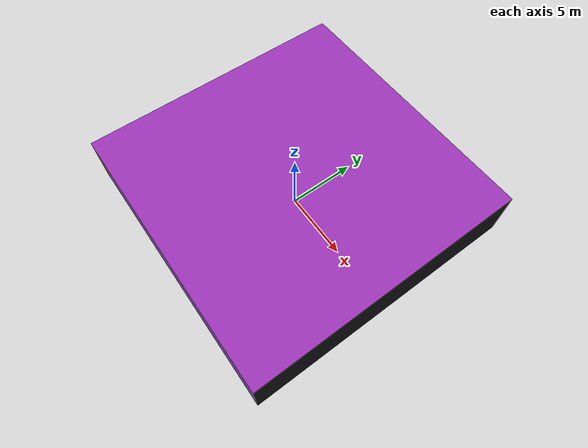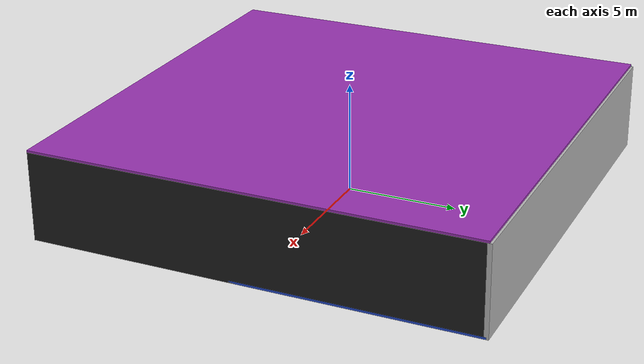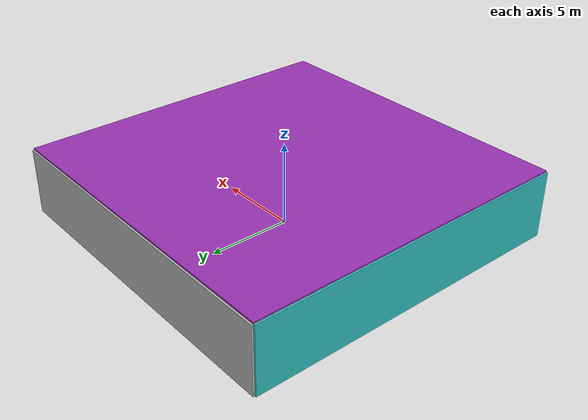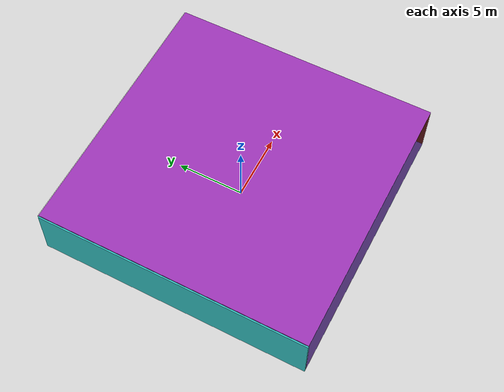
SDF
<sdf version="1.4">
 <world name="default">
  <physics type="ode">
   <max_step_size>0.001</max_step_size>
   <real_time_factor>1</real_time_factor>
   <real_time_update_rate>1000</real_time_update_rate>
   <gravity>0 0 -9.8</gravity>
  </physics>
  <scene><ambient>0.4 0.4 0.4 1</ambient><background>0.7 0.7 0.7 1</background><shadows>1</shadows></scene>
  <model name="Surrounding">
   <static>1</static>
   <link name="Ceiling">
    <collision name="Ceiling_Collision"><geometry><box><size>20 20 0.1</size></box></geometry></collision>
    <visual name="Ceiling_Visual">
     <geometry><box><size>20 20 0.1</size></box></geometry>
     <material>
      <script><uri>file://media/materials/scripts/gazebo.material</uri><name>Gazebo/PurpleGlow</name></script>
     </material>
    </visual>
    <pose>0 0 4.05 0 0 0</pose>
   </link>
   <link name="Wall_South">
    <collision name="Wall_South_Collision">
     <geometry><box><size>20 0 4</size></box></geometry>
     <pose>0 0 2 0 -0 0</pose>
    </collision>
    <visual name="Wall_South_Visual">
     <pose>0 0 2 0 -0 0</pose>
     <geometry><box><size>20 0 4</size></box></geometry>
     <material>
      <script><uri>file://media/materials/scripts/gazebo.material</uri><name>Gazebo/RedTransparent</name></script>
     </material>
    </visual>
    <velocity_decay><linear>0</linear><angular>0</angular></velocity_decay>
    <pose>0 -10 0 0 -0 0</pose>
   </link>
   <link name="Wall_East">
    <collision name="Wall_21_Collision">
     <geometry><box><size>20 0 4</size></box></geometry>
     <pose>0 0 2 0 -0 0</pose>
    </collision>
    <visual name="Wall_21_Visual">
     <pose>0 0 2 0 -0 0</pose>
     <geometry><box><size>20 0 4</size></box></geometry>
     <material>
      <script><uri>file://media/materials/scripts/gazebo.material</uri><name>Gazebo/FlatBlack</name></script>
     </material>
    </visual>
    <velocity_decay><linear>0</linear><angular>0</angular></velocity_decay>
    <pose>10 0 0 0 -0 1.5708</pose>
   </link>
   <link name="Wall_North">
    <collision name="Wall_22_Collision">
     <geometry><box><size>20 0.2 4</size></box></geometry>
     <pose>0 0 2 0 -0 0</pose>
    </collision>
    <visual name="Wall_22_Visual">
     <pose>0 0 2 0 -0 0</pose>
     <geometry><box><size>20 0.2 4</size></box></geometry>
     <material>
      <script><uri>file://media/materials/scripts/gazebo.material</uri><name>Gazebo/PioneerBody</name></script>
     </material>
    </visual>
    <velocity_decay><linear>0</linear><angular>0</angular></velocity_decay>
    <pose>0 10 0 0 -0 0</pose>
   </link>
   <link name="Wall_West">
    <collision name="Wall_23_Collision">
     <geometry><box><size>20 0.2 4</size></box></geometry>
     <pose>0 0 2 0 -0 0</pose>
    </collision>
    <visual name="Wall_23_Visual">
     <pose>0 0 2 0 -0 0</pose>
     <geometry><box><size>20 0.2 4</size></box></geometry>
     <material>
      <script>
       <uri>file://media/materials/scripts/gazebo.material</uri>
       <name>Gazebo/TurquoiseGlowOutline</name>
      </script>
     </material>
    </visual>
    <velocity_decay><linear>0</linear><angular>0</angular></velocity_decay>
    <pose>-10 0 0 0 0 -1.5708</pose>
   </link>
   <link name="Ground_link">
    <collision name="collision">
     <pose>0 0 .05 0 -0 0</pose>
     <geometry><box><size>20 20 0.1</size></box></geometry>
    </collision>
    <visual name="visual">
     <pose>0 0 .05 0 -0 0</pose>
     <geometry><box><size>20 20 0.1</size></box></geometry>
     <material>
      <script><uri>file://media/materials/scripts/gazebo.material</uri><name>Gazebo/BlueLaser</name></script>
     </material>
    </visual>
   </link>
   <static>1</static>
  </model>
  <spherical_coordinates>
   <surface_model>EARTH_WGS84</surface_model>
   <latitude_deg>0</latitude_deg>
   <longitude_deg>0</longitude_deg>
   <elevation>0</elevation>
   <heading_deg>0</heading_deg>
  </spherical_coordinates>
  <light name="lightball_0" type="diffuse">
   <diffuse>0.8 0.8 0.8 1</diffuse>
   <specular>0.2 0.2 0.2 1</specular>
   <attenuation>
    <range>100</range>
    <constant>0.7</constant>
    <linear>0.01</linear>
    <quadratic>0.001</quadratic>
   </attenuation>
   <direction>-0.5 0.1 -0.9</direction>
   <pose>5.52970671533 -9.79969690681 3.0156755641 0 0 0</pose>
  </light>
  <light name="lightball_1" type="diffuse">
   <diffuse>0.8 0.8 0.8 1</diffuse>
   <specular>0.2 0.2 0.2 1</specular>
   <attenuation>
    <range>100</range>
    <constant>0.7</constant>
    <linear>0.01</linear>
    <quadratic>0.001</quadratic>
   </attenuation>
   <direction>-0.5 0.1 -0.9</direction>
   <pose>-8.28978555531 6.38620492503 1.55809194838 0 0 0</pose>
  </light>
  <light name="lightball_2" type="diffuse">
   <diffuse>0.8 0.8 0.8 1</diffuse>
   <specular>0.2 0.2 0.2 1</specular>
   <attenuation>
    <range>100</range>
    <constant>0.7</constant>
    <linear>0.01</linear>
    <quadratic>0.001</quadratic>
   </attenuation>
   <direction>-0.5 0.1 -0.9</direction>
   <pose>-2.91822445478 1.84896340282 0.70618057319 0 0 0</pose>
  </light>
  <light name="lightball_3" type="diffuse">
   <diffuse>0.8 0.8 0.8 1</diffuse>
   <specular>0.2 0.2 0.2 1</specular>
   <attenuation>
    <range>100</range>
    <constant>0.7</constant>
    <linear>0.01</linear>
    <quadratic>0.001</quadratic>
   </attenuation>
   <direction>-0.5 0.1 -0.9</direction>
   <pose>6.90628750145 4.25547138646 3.47125541093 0 0 0</pose>
  </light>
  <light name="lightball_4" type="diffuse">
   <diffuse>0.8 0.8 0.8 1</diffuse>
   <specular>0.2 0.2 0.2 1</specular>
   <attenuation>
    <range>100</range>
    <constant>0.7</constant>
    <linear>0.01</linear>
    <quadratic>0.001</quadratic>
   </attenuation>
   <direction>-0.5 0.1 -0.9</direction>
   <pose>-9.63900522733 1.94985673887 1.18997338681 0 0 0</pose>
  </light>
  <light name="lightball_5" type="diffuse">
   <diffuse>0.8 0.8 0.8 1</diffuse>
   <specular>0.2 0.2 0.2 1</specular>
   <attenuation>
    <range>100</range>
    <constant>0.7</constant>
    <linear>0.01</linear>
    <quadratic>0.001</quadratic>
   </attenuation>
   <direction>-0.5 0.1 -0.9</direction>
   <pose>6.78240814634 -9.49150094017 3.64642204119 0 0 0</pose>
  </light>
  <light name="lightball_6" type="diffuse">
   <diffuse>0.8 0.8 0.8 1</diffuse>
   <specular>0.2 0.2 0.2 1</specular>
   <attenuation>
    <range>100</range>
    <constant>0.7</constant>
    <linear>0.01</linear>
    <quadratic>0.001</quadratic>
   </attenuation>
   <direction>-0.5 0.1 -0.9</direction>
   <pose>-1.90904192898 -0.945038962949 3.28458878057 0 0 0</pose>
  </light>
  <light name="lightball_7" type="diffuse">
   <diffuse>0.8 0.8 0.8 1</diffuse>
   <specular>0.2 0.2 0.2 1</specular>
   <attenuation>
    <range>100</range>
    <constant>0.7</constant>
    <linear>0.01</linear>
    <quadratic>0.001</quadratic>
   </attenuation>
   <direction>-0.5 0.1 -0.9</direction>
   <pose>-3.20476790035 6.40284052151 0.969871457123 0 0 0</pose>
  </light>
  <light name="lightball_8" type="diffuse">
   <diffuse>0.8 0.8 0.8 1</diffuse>
   <specular>0.2 0.2 0.2 1</specular>
   <attenuation>
    <range>100</range>
    <constant>0.7</constant>
    <linear>0.01</linear>
    <quadratic>0.001</quadratic>
   </attenuation>
   <direction>-0.5 0.1 -0.9</direction>
   <pose>8.2253980442 7.78448257459 2.10415846784 0 0 0</pose>
  </light>
  <light name="lightball_9" type="diffuse">
   <diffuse>0.8 0.8 0.8 1</diffuse>
   <specular>0.2 0.2 0.2 1</specular>
   <attenuation>
    <range>100</range>
    <constant>0.7</constant>
    <linear>0.01</linear>
    <quadratic>0.001</quadratic>
   </attenuation>
   <direction>-0.5 0.1 -0.9</direction>
   <pose>-0.196493856209 -7.86705468489 1.73227556266 0 0 0</pose>
  </light>
  <light name="lightball_10" type="diffuse">
   <diffuse>0.8 0.8 0.8 1</diffuse>
   <specular>0.2 0.2 0.2 1</specular>
   <attenuation>
    <range>100</range>
    <constant>0.7</constant>
    <linear>0.01</linear>
    <quadratic>0.001</quadratic>
   </attenuation>
   <direction>-0.5 0.1 -0.9</direction>
   <pose>2.06684153279 0.844527823473 1.97301790749 0 0 0</pose>
  </light>
  <include><uri>model://cabinet</uri><pose>-7.12742980204 1.98006786105 0 0 0 2.14659199225</pose></include>
  <include>
   <uri>model://robocup_3Dsim_goal</uri>
   <pose>-4.88889513696 4.50801691503 0 0 0 1.67715879415</pose>
  </include>
  <include>
   <uri>model://textured_shapes</uri>
   <pose>1.58125861238 -4.97098381776 0 0 0 0.0101864278875</pose>
  </include>
  <include><uri>model://cabinet</uri><pose>3.93523428747 6.89055444372 0 0 0 0.700017569472</pose></include>
 </world>
</sdf>

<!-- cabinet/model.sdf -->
<sdf version="1.5">
  <model name="cabinet">
    <static>true</static>
    <link name="cabinet_bottom_plate">
      <inertial>
        <pose>0 0 -1 0 0 0</pose>
        <inertia>
          <ixx>2.050000</ixx>
          <ixy>0</ixy>
          <ixz>0</ixz>
          <iyy>2.050000</iyy>
          <iyz>0</iyz>
          <izz>2.050000</izz>
        </inertia>
        <mass>25.000000</mass>
      </inertial>
      <collision name="cabinet_bottom_plate_geom">
        <pose>0 0 0.010000 0 0 0</pose>
        <geometry>
          <box>
            <size>0.450000 0.450000 0.020000</size>
          </box>
        </geometry>
      </collision>
      <visual name="cabinet_bottom_plate_geom_visual">
        <pose>0 0 0.010000 0 0 0</pose>
        <geometry>
          <box>
            <size>0.450000 0.450000 0.020000</size>
          </box>
        </geometry>
        <material>
          <script>
            <uri>model://media/materials/scripts/gazebo.material</uri>
            <name>Gazebo/Wood</name>
          </script>
        </material>
      </visual>
      <collision name="cabinet_bottom_plate_geom_cabinet_back_plate">
        <pose>0.235000 0 0.510000 0 0 0</pose>
        <geometry>
          <box>
            <size>0.020000 0.450000 1.020000</size>
          </box>
        </geometry>
      </collision>
      <visual name="cabinet_bottom_plate_geom_cabinet_back_plate_visual">
        <pose>0.235000 0 0.510000 0 0 0</pose>
        <geometry>
          <box>
            <size>0.020000 0.450000 1.020000</size>
          </box>
        </geometry>
        <material>
          <script>
            <uri>model://media/materials/scripts/gazebo.material</uri>
            <name>Gazebo/Wood</name>
          </script>
        </material>
      </visual>
      <collision name="cabinet_bottom_plate_geom_cabinet_left_plate">
        <pose>0 0.235000 0.510000 0 0 0</pose>
        <geometry>
          <box>
            <size>0.450000 0.020000 1.020000</size>
          </box>
        </geometry>
      </collision>
      <visual name="cabinet_bottom_plate_geom_cabinet_left_plate_visual">
        <pose>0 0.235000 0.510000 0 0 0</pose>
        <geometry>
          <box>
            <size>0.450000 0.020000 1.020000</size>
          </box>
        </geometry>
        <material>
          <script>
            <uri>model://media/materials/scripts/gazebo.material</uri>
            <name>Gazebo/Wood</name>
          </script>
        </material>
      </visual>
      <collision name="cabinet_bottom_plate_geom_cabinet_middle_plate">
        <pose>0 0 0.510000 0 0 0</pose>
        <geometry>
          <box>
            <size>0.450000 0.450000 0.020000</size>
          </box>
        </geometry>
      </collision>
      <visual name="cabinet_bottom_plate_geom_cabinet_middle_plate_visual">
        <pose>0 0 0.510000 0 0 0</pose>
        <geometry>
          <box>
            <size>0.450000 0.450000 0.020000</size>
          </box>
        </geometry>
        <material>
          <script>
            <uri>model://media/materials/scripts/gazebo.material</uri>
            <name>Gazebo/Wood</name>
          </script>
        </material>
      </visual>
      <collision name="cabinet_bottom_plate_geom_cabinet_right_plate">
        <pose>0 -0.235000 0.510000 0 0 0</pose>
        <geometry>
          <box>
            <size>0.450000 0.020000 1.020000</size>
          </box>
        </geometry>
      </collision>
      <visual name="cabinet_bottom_plate_geom_cabinet_right_plate_visual">
        <pose>0 -0.235000 0.510000 0 0 0</pose>
        <geometry>
          <box>
            <size>0.450000 0.020000 1.020000</size>
          </box>
        </geometry>
        <material>
          <script>
            <uri>model://media/materials/scripts/gazebo.material</uri>
            <name>Gazebo/Wood</name>
          </script>
        </material>
      </visual>
      <collision name="cabinet_bottom_plate_geom_cabinet_top_plate">
        <pose>0 0 1.010000 0 0 0</pose>
        <geometry>
          <box>
            <size>0.450000 0.450000 0.020000</size>
          </box>
        </geometry>
      </collision>
      <visual name="cabinet_bottom_plate_geom_cabinet_top_plate_visual">
        <pose>0 0 1.010000 0 0 0</pose>
        <geometry>
          <box>
            <size>0.450000 0.450000 0.020000</size>
          </box>
        </geometry>
        <material>
          <script>
            <uri>model://media/materials/scripts/gazebo.material</uri>
            <name>Gazebo/Wood</name>
          </script>
        </material>
      </visual>
    </link>
  </model>
</sdf>

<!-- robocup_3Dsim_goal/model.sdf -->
<sdf version="1.5">
  <model name="robocup_3d_goal">
    <static>true</static>
    <link name="left_post">
      <pose>0 1.05 0.45 0 0 0</pose>
      <collision name="collision">
        <geometry>
          <cylinder>
            <radius>0.05</radius>
            <length>0.9</length>
          </cylinder>
        </geometry>
      </collision>
      <visual name="visual">
        <geometry>
          <cylinder>
            <radius>0.05</radius>
            <length>0.9</length>
          </cylinder>
        </geometry>
        <material>
          <script>
            <uri>file://media/materials/scripts/gazebo.material</uri>
            <name>Gazebo/ZincYellow</name>
          </script>
        </material>
      </visual>
    </link>
    <link name="left_support_horiz_lower">
      <pose>0.30 1.05 0.01 0 0 0</pose>
      <collision name="collision">
        <geometry>
          <box>
            <size>0.50 0.02 0.02</size>
          </box>
        </geometry>
      </collision>
      <visual name="visual">
        <geometry>
          <box>
            <size>0.50 0.02 0.02</size>
          </box>
        </geometry>
        <material>
          <script>
            <uri>file://media/materials/scripts/gazebo.material</uri>
            <name>Gazebo/White</name>
          </script>
        </material>
      </visual>
    </link>
    <link name="left_support_horiz_upper">
      <pose>0.30 1.05 0.79 0 0 0</pose>
      <collision name="collision">
        <geometry>
          <box>
            <size>0.50 0.02 0.02</size>
          </box>
        </geometry>
      </collision>
      <visual name="visual">
        <geometry>
          <box>
            <size>0.50 0.02 0.02</size>
          </box>
        </geometry>
        <material>
          <script>
            <uri>file://media/materials/scripts/gazebo.material</uri>
            <name>Gazebo/White</name>
          </script>
        </material>
      </visual>
    </link>
    <link name="left_support_vertical">
      <pose>0.56 1.05 0.4 0 1.5708 0</pose>
      <collision name="collision">
        <geometry>
          <box>
            <size>0.80 0.02 0.02</size>
          </box>
        </geometry>
      </collision>
      <visual name="visual">
        <geometry>
          <box>
            <size>0.80 0.02 0.02</size>
          </box>
        </geometry>
        <material>
          <script>
            <uri>file://media/materials/scripts/gazebo.material</uri>
            <name>Gazebo/White</name>
          </script>
        </material>
      </visual>
    </link>
    <link name="right_support_horiz_lower">
      <pose>0.30 -1.05 0.01 0 0 0</pose>
      <collision name="collision">
        <geometry>
          <box>
            <size>0.50 0.02 0.02</size>
          </box>
        </geometry>
      </collision>
      <visual name="visual">
        <geometry>
          <box>
            <size>0.50 0.02 0.02</size>
          </box>
        </geometry>
        <material>
          <script>
            <uri>file://media/materials/scripts/gazebo.material</uri>
            <name>Gazebo/White</name>
          </script>
        </material>
      </visual>
    </link>
    <link name="right_support_horiz_upper">
      <pose>0.30 -1.05 0.79 0 0 0</pose>
      <collision name="collision">
        <geometry>
          <box>
            <size>0.50 0.02 0.02</size>
          </box>
        </geometry>
      </collision>
      <visual name="visual">
        <geometry>
          <box>
            <size>0.50 0.02 0.02</size>
          </box>
        </geometry>
        <material>
          <script>
            <uri>file://media/materials/scripts/gazebo.material</uri>
            <name>Gazebo/White</name>
          </script>
        </material>
      </visual>
    </link>
    <link name="right_support_vertical">
      <pose>0.56 -1.05 0.4 0 1.5708 0</pose>
      <collision name="collision">
        <geometry>
          <box>
            <size>0.80 0.02 0.02</size>
          </box>
        </geometry>
      </collision>
      <visual name="visual">
        <geometry>
          <box>
            <size>0.80 0.02 0.02</size>
          </box>
        </geometry>
        <material>
          <script>
            <uri>file://media/materials/scripts/gazebo.material</uri>
            <name>Gazebo/White</name>
          </script>
        </material>
      </visual>
    </link>
    <link name="center_support_horiz_lower">
      <pose>0.56 0 0.01 0 1.5708 0</pose>
      <collision name="collision">
        <geometry>
          <box>
            <size>0.02 2.08 0.02</size>
          </box>
        </geometry>
      </collision>
      <visual name="visual">
        <geometry>
          <box>
            <size>0.02 2.08 0.02</size>
          </box>
        </geometry>
        <material>
          <script>
            <uri>file://media/materials/scripts/gazebo.material</uri>
            <name>Gazebo/White</name>
          </script>
        </material>
      </visual>
    </link>
    <link name="center_support_horiz_upper">
      <pose>0.56 0 0.79 0 1.5708 0</pose>
      <collision name="collision">
        <geometry>
          <box>
            <size>0.02 2.08 0.02</size>
          </box>
        </geometry>
      </collision>
      <visual name="visual">
        <geometry>
          <box>
            <size>0.02 2.08 0.02</size>
          </box>
        </geometry>
        <material>
          <script>
            <uri>file://media/materials/scripts/gazebo.material</uri>
            <name>Gazebo/White</name>
          </script>
        </material>
      </visual>
    </link>
    <link name="right_post">
      <pose>0 -1.05 0.45 0 0 0</pose>
      <collision name="collision">
        <geometry>
          <cylinder>
            <radius>0.05</radius>
            <length>0.9</length>
          </cylinder>
        </geometry>
      </collision>
      <visual name="visual">
        <geometry>
          <cylinder>
            <radius>0.05</radius>
            <length>0.9</length>
          </cylinder>
        </geometry>
        <material>
          <script>
            <uri>file://media/materials/scripts/gazebo.material</uri>
            <name>Gazebo/ZincYellow</name>
          </script>
        </material>
      </visual>
    </link>
    <link name="crossbar">
      <pose>0 0 0.85 1.57 1.57 0</pose>
      <collision name="collision">
        <geometry>
          <cylinder>
            <radius>0.05</radius>
            <length>2.0</length>
          </cylinder>
        </geometry>
      </collision>
      <visual name="visual">
        <geometry>
          <cylinder>
            <radius>0.05</radius>
            <length>2.0</length>
          </cylinder>
        </geometry>
        <material>
          <script>
            <uri>file://media/materials/scripts/gazebo.material</uri>
            <name>Gazebo/ZincYellow</name>
          </script>
        </material>
      </visual>
    </link>
    <link name="center_net">
      <pose>0.56 0 0.40 0 0 0</pose>
      <collision name="collision">
        <geometry>
          <box>
            <size>0.01 2.1 0.80</size>
          </box>
        </geometry>
      </collision>
      <visual name="visual">
        <geometry>
          <box>
            <size>0.01 2.1 0.80</size>
          </box>
        </geometry>
        <material>
          <script>
            <uri>model://../model_source/models/robocup09_spl_field/materials/scripts/</uri>
            <uri>model://../model_source/models/robocup09_spl_field/materials/textures/</uri>
            <name>RoboCup/Net</name>
          </script>
        </material>
      </visual>
    </link>
    <link name="left_net">
      <pose>0.30 1.05 0.40 0 0 0</pose>
      <collision name="collision">
        <geometry>
          <box>
            <size>0.50 0.01 0.76</size>
          </box>
        </geometry>
      </collision>
      <visual name="visual">
        <geometry>
          <box>
            <size>0.50 0.01 0.76</size>
          </box>
        </geometry>
        <material>
          <script>
            <uri>model://../model_source/models/robocup09_spl_field/materials/scripts/</uri>
            <uri>model://../model_source/models/robocup09_spl_field/materials/textures/</uri>
            <name>RoboCup/Net</name>
          </script>
        </material>
      </visual>
    </link>
    <link name="right_net">
      <pose>0.30 -1.05 0.40 0 0 0</pose>
      <collision name="collision">
        <geometry>
          <box>
            <size>0.50 0.01 0.76</size>
          </box>
        </geometry>
      </collision>
      <visual name="visual">
        <geometry>
          <box>
            <size>0.50 0.01 0.76</size>
          </box>
        </geometry>
        <material>
          <script>
            <uri>model://../model_source/models/robocup09_spl_field/materials/scripts/</uri>
            <uri>model://../model_source/models/robocup09_spl_field/materials/textures/</uri>
            <name>RoboCup/Net</name>
          </script>
        </material>
      </visual>
    </link>
  </model>
</sdf>

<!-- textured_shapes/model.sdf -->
<sdf version="1.6">
  <model name="textured_shapes">
    <pose>0 0 0.5 0 0 0</pose>
    <link name="box">
      <pose>0 -1.5 0 0 0 0</pose>
      <collision name="collision">
        <geometry>
          <box>
            <size>1 1 1</size>
          </box>
        </geometry>
      </collision>
      <visual name="visual">
        <geometry>
          <box>
            <size>1 1 1</size>
          </box>
        </geometry>
        <material>
          <script>
            <uri>model://../model_source/models/textured_shapes/materials/scripts</uri>
            <uri>model://../model_source/models/textured_shapes/materials/textures</uri>
            <name>TexturedShape/Squares</name>
          </script>
        </material>
      </visual>
    </link>
    <link name="sphere">
      <collision name="collision">
        <geometry>
          <sphere>
            <radius>0.5</radius>
          </sphere>
        </geometry>
      </collision>
      <visual name="visual">
        <geometry>
          <sphere>
            <radius>0.5</radius>
          </sphere>
        </geometry>
        <material>
          <script>
            <uri>model://../model_source/models/textured_shapes/materials/scripts</uri>
            <uri>model://../model_source/models/textured_shapes/materials/textures</uri>
            <name>TexturedShape/Squares</name>
          </script>
        </material>
      </visual>
    </link>
    <link name="cylinder">
      <pose>0 1.5 0 0 0 0</pose>
      <collision name="collision">
        <geometry>
          <cylinder>
            <radius>0.5</radius>
            <length>1</length>
          </cylinder>
        </geometry>
      </collision>
      <visual name="visual">
        <geometry>
          <cylinder>
            <radius>0.5</radius>
            <length>1</length>
          </cylinder>
        </geometry>
        <material>
          <script>
            <uri>model://../model_source/models/textured_shapes/materials/scripts</uri>
            <uri>model://../model_source/models/textured_shapes/materials/textures</uri>
            <name>TexturedShape/Squares</name>
          </script>
        </material>
      </visual>
    </link>
  </model>
</sdf>
